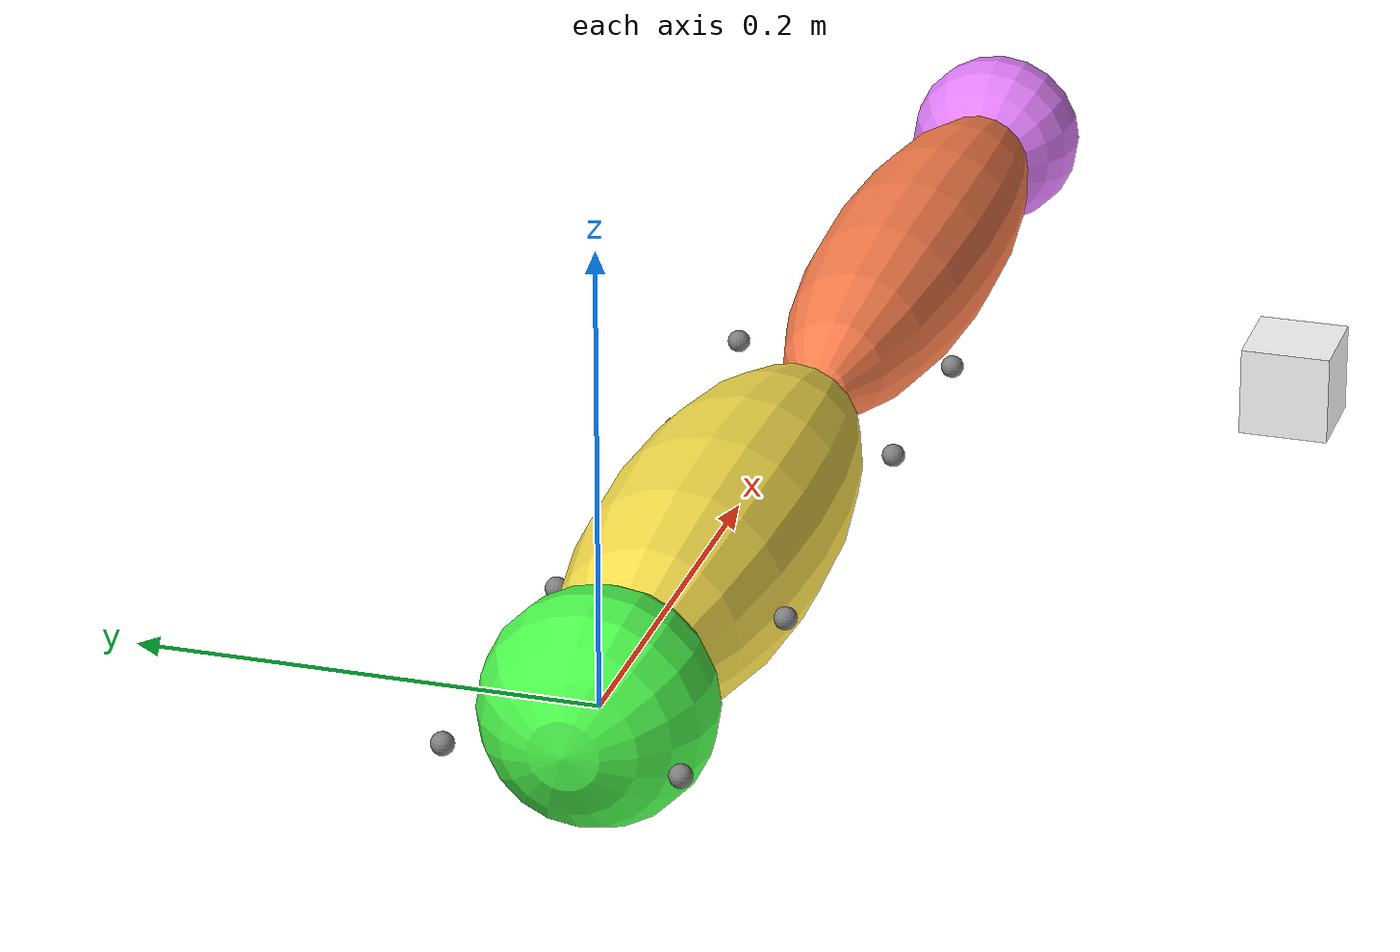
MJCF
<mujoco model="MyoArm_v0.01">
    <compiler angle="radian" autolimits="true"/>
    <option timestep="0.005"/>
    <size njmax="1000" nconmax="400" nkey="1" nuser_jnt="1"/>
    <visual>
        <scale framelength="0.5" framewidth="0.01"/>
    </visual>
    <asset>
        <texture type="skybox" builtin="gradient" rgb1="1 1 1" rgb2="0.6 0.8 1" width="256" height="1536"/>
        <texture name="grid" type="2d" builtin="checker" width="512" height="512" rgb1=".1 .2 .3" rgb2=".2 .3 .4"/>
        <material name="grid" texture="grid" texrepeat="1 1" texuniform="true" reflectance=".2"/>
    </asset>
    <worldbody>
        <light directional="true"/>
        <site name="baseProximalOrigin" pos="-.05 0.050000 0" size="0.005"/>
        <site name="baseDistalOrigin" pos="-.05 -0.050000 0" size="0.005"/>
        <body name="ground" euler="1.571 0 0">
            <body name="base" pos="0 0 0">
                <geom type="ellipsoid" size=".05" rgba=".3 1 .3 1" fromto="-.05 0 0 .05 0 0"/>
                <inertial pos="0 0 0" mass=".86" diaginertia="0.025 0.025 0.025"/>
                <joint name="shoulder" pos="0 0 0" axis="0 1 0" range="-2.181662 0.610865" damping="0.1"/>
                <body name="ProximalForearm" pos="0 0 0">
                    <inertial pos="0 0 0" mass="0.86" diaginertia="0.025 0.025 0.025"/>
                    <geom type="ellipsoid" size=".05" rgba="1 .9 .3 1" fromto="0 0 0 .32 0 0"/>
                    <site name="ProximalForearmProximalInsertion" pos=".1 0 -0.05" size="0.005"/>
                    <site name="ProximalForearmDistalInsertion" pos=".1 0 0.05" size="0.005"/>
                    <site name="ProximalForearmProximalOrigin" pos=".27 0 -0.05" size="0.005"/>
                    <site name="ProximalForearmDistalOrigin" pos=".27 0 0.05" size="0.005"/>
                    <body name="DistalForearm" pos=".32 0 0">
                        <inertial pos="0 0 0" mass="0.86" diaginertia="0.025 0.025 0.025"/>
                        <geom type="ellipsoid" size=".04" rgba="1 .5 .3 1" fromto="0 0 0 .32 0 0"/>
                        <site name="DistalForearmProximalInsertion" pos=".05 0 -0.05" size="0.005"/>
                        <site name="DistalForearmDistalInsertion" pos=".05 0 0.05" size="0.005"/>
                        <joint name="elbow" pos="0 0 0" axis="0 1 0" range="0 2.792527" damping="0.1"/>
                        <body name="Hand" pos=".32 0 0">
                            <inertial pos="0 0 0" mass="0.1" diaginertia="0.025 0.025 0.025"/>
                            <geom type="ellipsoid" size=".04" rgba=".9 .5 1 1" fromto="-.04 0 0 .04 0 0"/>
                            <site name="handsite" pos="0 0 0" rgba="1 0 0 1"/>
                        </body>
                    </body>
                </body>
            </body>
        </body>
        <body name="Object" pos="0.4 -0.2 0.0">
            <geom type="box" size="0.02 0.02 0.02" rgba="1 1 1 1"/>
            <site name="object_o" pos="0 0 0" rgba="1 0 0 1"/>
        </body>
    </worldbody>
    <actuator>
        <motor joint="shoulder" ctrlrange="-2.0 2.0" ctrllimited="true" gear="5"/>
        <motor joint="elbow" ctrlrange="-2.0 2.0" ctrllimited="true" gear="5"/>
    </actuator>
</mujoco>
